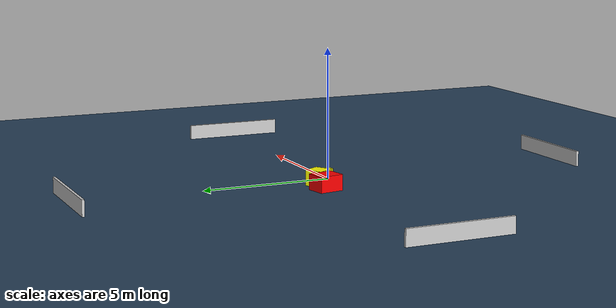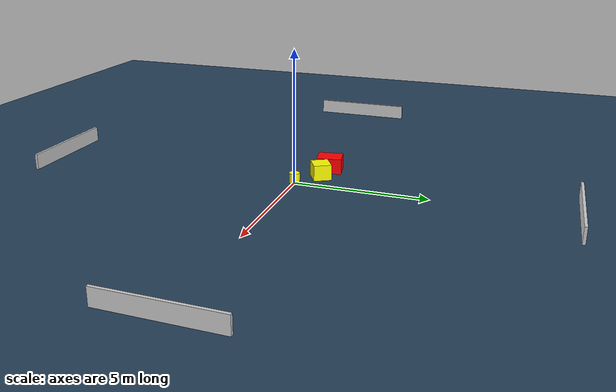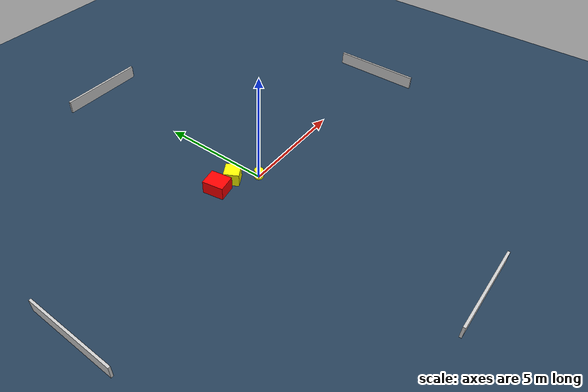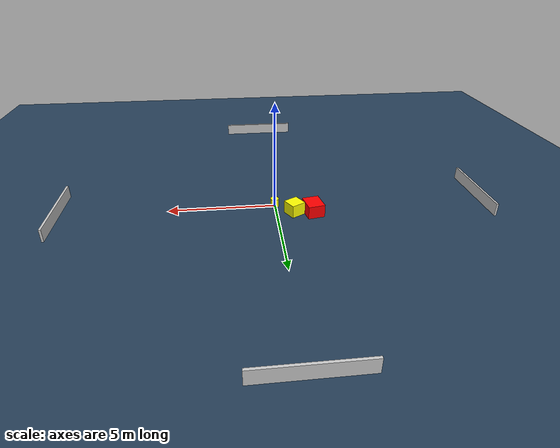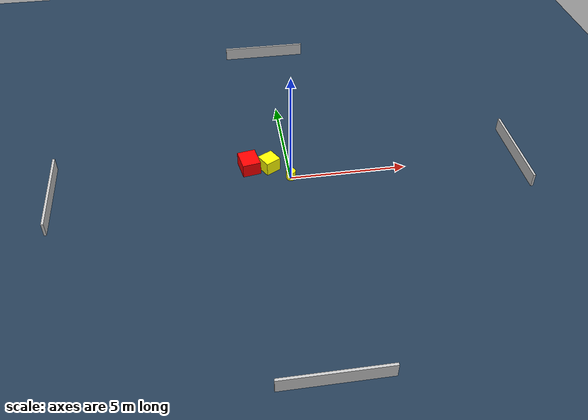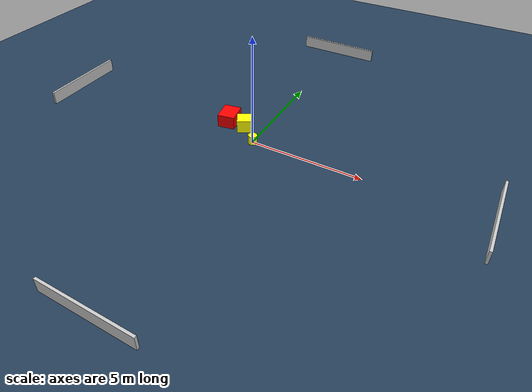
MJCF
<?xml version="1.0" ?>
<mujoco model="generated_environment">
  <option timestep="0.01" integrator="RK4" cone="elliptic"/>
  <default>
    <geom density="1"/>
  </default>
  <asset>
    <texture builtin="gradient" height="3072" name="skybox" rgb1="0.3 0.5 0.7" rgb2="0 0 0" type="skybox" width="512"/>
    <texture builtin="checker" height="300" name="groundplane" rgb1="0.2 0.3 0.4" rgb2="0.1 0.2 0.3" type="2d" width="300"/>
    <material name="groundplane" reflectance="0.2" texrepeat="5 5" texture="groundplane"/>
  </asset>
  <worldbody>
    <light dir="0 0 -1" directional="true" pos="0 0 1.5"/>
    <geom condim="3" friction="0.5 0.005 0.001" material="groundplane" name="floor" pos="0 0 0" size="0 0 0.05" type="plane"/>
    <body name="walls">
      <geom name="wall_1" condim="4" pos="-10.0 0.0 0.3" rgba="0.800000011920929 0.800000011920929 0.800000011920929 1.0" size="0.05 2.0 0.3" type="box"/>
      <geom name="wall_2" condim="4" pos="10.0 0.0 0.3" rgba="0.800000011920929 0.800000011920929 0.800000011920929 1.0" size="0.05 2.0 0.3" type="box"/>
      <geom name="wall_3" condim="4" pos="0.0 -10.0 0.3" rgba="0.800000011920929 0.800000011920929 0.800000011920929 1.0" size="2.0 0.05 0.3" type="box"/>
      <geom name="wall_4" condim="4" pos="0.0 10.0 0.3" rgba="0.800000011920929 0.800000011920929 0.800000011920929 1.0" size="2.0 0.05 0.3" type="box"/>
    </body>
    <body name="robot">
      <joint name="joint_x" type="slide" pos="0 0 0" axis="1 0 0"/>
      <joint name="joint_y" type="slide" pos="0 0 0" axis="0 1 0"/>
      <geom name="robot" type="cylinder" pos="0.0 0.0 0.2" size="0.2 0.2 0.0" mass="5.0" friction="1.0 0.005 0.0001" condim="4" rgba="1.0 1.0 0.0 1.0"/>
    </body>
    <body name="obstacle_1_movable">
      <geom name="obstacle_1_movable" condim="4" pos="-0.8407909184564751 0.759064047107915 0.3" euler="0 0 209.48822964794908" friction="0.0 0.005 0.001" rgba="1.0 1.0 0.0 1.0" size="0.3466904597807796 0.3383046589928495 0.3" type="box" mass="0.1"/>
      <joint type="free"/>
    </body>
    <body name="obstacle_2_static">
      <geom name="obstacle_2_static" condim="4" pos="-1.7050196293867412 0.8552448926457343 0.3" euler="0 0 190.02268562767802" friction="0.0 0.005 0.001" rgba="1.0 0.0 0.0 1.0" size="0.39176565299690413 0.474556734193862 0.3" type="box"/>
    </body>
  </worldbody>
  <actuator>
    <motor name="actuator_x" joint="joint_x" gear="1" ctrlrange="-1 1"/>
    <motor name="actuator_y" joint="joint_y" gear="1" ctrlrange="-1 1"/>
  </actuator>
</mujoco>
